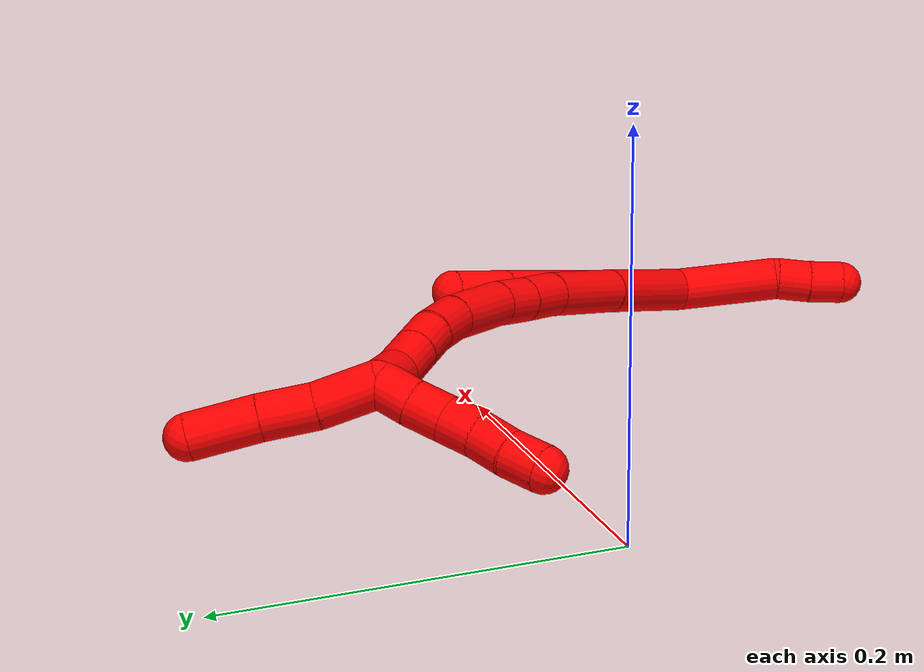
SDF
<sdf version="1.7">
 <world name="default">
  <model name="2">
   <static>0</static>
   <link name="2">
    <collision name="collision-cylinder-e_1_2_8">
     <pose>0.012264 0.005995 0.017486 -0.330293 0.585755 -0.100431</pose>
     <geometry><cylinder><radius>0.0125</radius><length>0.044366</length></cylinder></geometry>
     <surface>
      <friction><ode><mu>1.16</mu><mu2>1.16</mu2><slip1>0</slip1><slip2>0</slip2></ode></friction>
      <contact><ode><kp>1e+06</kp><kd>1</kd><max_vel>0</max_vel><min_depth>0.001</min_depth></ode></contact>
     </surface>
    </collision>
    <visual name="visual-cylinder-e_1_2_8">
     <pose>0.012264 0.005995 0.017486 -0.330293 0.585755 -0.100431</pose>
     <geometry><cylinder><radius>0.0125</radius><length>0.044366</length></cylinder></geometry>
     <material><ambient>1 0 0 1</ambient></material>
    </visual>
    <collision name="collision-cylinder-e_2_8_9">
     <pose>0.044277 0.02388 0.062023 -0.414113 0.58919 -0.127306</pose>
     <geometry><cylinder><radius>0.0125</radius><length>0.071082</length></cylinder></geometry>
     <surface>
      <friction><ode><mu>1.16</mu><mu2>1.16</mu2><slip1>0</slip1><slip2>0</slip2></ode></friction>
      <contact><ode><kp>1e+06</kp><kd>1</kd><max_vel>0</max_vel><min_depth>0.001</min_depth></ode></contact>
     </surface>
    </collision>
    <visual name="visual-cylinder-e_2_8_9">
     <pose>0.044277 0.02388 0.062023 -0.414113 0.58919 -0.127306</pose>
     <geometry><cylinder><radius>0.0125</radius><length>0.071082</length></cylinder></geometry>
     <material><ambient>1 0 0 1</ambient></material>
    </visual>
    <collision name="collision-cylinder-e_3_9_6">
     <pose>0.07368 0.041752 0.102091 -0.430747 0.592958 -0.13346</pose>
     <geometry><cylinder><radius>0.0125</radius><length>0.034552</length></cylinder></geometry>
     <surface>
      <friction><ode><mu>1.16</mu><mu2>1.16</mu2><slip1>0</slip1><slip2>0</slip2></ode></friction>
      <contact><ode><kp>1e+06</kp><kd>1</kd><max_vel>0</max_vel><min_depth>0.001</min_depth></ode></contact>
     </surface>
    </collision>
    <visual name="visual-cylinder-e_3_9_6">
     <pose>0.07368 0.041752 0.102091 -0.430747 0.592958 -0.13346</pose>
     <geometry><cylinder><radius>0.0125</radius><length>0.034552</length></cylinder></geometry>
     <material><ambient>1 0 0 1</ambient></material>
    </visual>
    <collision name="collision-cylinder-e_1_2_10">
     <pose>-0.013826 0.00548 -0.026 -2.93386 -0.479782 2.33586</pose>
     <geometry><cylinder><radius>0.0125</radius><length>0.059905</length></cylinder></geometry>
     <surface>
      <friction><ode><mu>1.16</mu><mu2>1.16</mu2><slip1>0</slip1><slip2>0</slip2></ode></friction>
      <contact><ode><kp>1e+06</kp><kd>1</kd><max_vel>0</max_vel><min_depth>0.001</min_depth></ode></contact>
     </surface>
    </collision>
    <visual name="visual-cylinder-e_1_2_10">
     <pose>-0.013826 0.00548 -0.026 -2.93386 -0.479782 2.33586</pose>
     <geometry><cylinder><radius>0.0125</radius><length>0.059905</length></cylinder></geometry>
     <material><ambient>1 0 0 1</ambient></material>
    </visual>
    <collision name="collision-cylinder-e_2_10_11">
     <pose>-0.031199 0.01057 -0.061369 3.09999 -0.36168 -2.915</pose>
     <geometry><cylinder><radius>0.0125</radius><length>0.020054</length></cylinder></geometry>
     <surface>
      <friction><ode><mu>1.16</mu><mu2>1.16</mu2><slip1>0</slip1><slip2>0</slip2></ode></friction>
      <contact><ode><kp>1e+06</kp><kd>1</kd><max_vel>0</max_vel><min_depth>0.001</min_depth></ode></contact>
     </surface>
    </collision>
    <visual name="visual-cylinder-e_2_10_11">
     <pose>-0.031199 0.01057 -0.061369 3.09999 -0.36168 -2.915</pose>
     <geometry><cylinder><radius>0.0125</radius><length>0.020054</length></cylinder></geometry>
     <material><ambient>1 0 0 1</ambient></material>
    </visual>
    <collision name="collision-cylinder-e_3_11_5">
     <pose>-0.038795 0.010461 -0.079902 -3.11091 -0.415828 2.99639</pose>
     <geometry><cylinder><radius>0.0125</radius><length>0.020041</length></cylinder></geometry>
     <surface>
      <friction><ode><mu>1.16</mu><mu2>1.16</mu2><slip1>0</slip1><slip2>0</slip2></ode></friction>
      <contact><ode><kp>1e+06</kp><kd>1</kd><max_vel>0</max_vel><min_depth>0.001</min_depth></ode></contact>
     </surface>
    </collision>
    <visual name="visual-cylinder-e_3_11_5">
     <pose>-0.038795 0.010461 -0.079902 -3.11091 -0.415828 2.99639</pose>
     <geometry><cylinder><radius>0.0125</radius><length>0.020041</length></cylinder></geometry>
     <material><ambient>1 0 0 1</ambient></material>
    </visual>
    <collision name="collision-cylinder-e_1_2_12">
     <pose>0.020137 0.021178 0.016933 -0.896307 0.638781 -0.31536</pose>
     <geometry><cylinder><radius>0.0125</radius><length>0.06755</length></cylinder></geometry>
     <surface>
      <friction><ode><mu>1.16</mu><mu2>1.16</mu2><slip1>0</slip1><slip2>0</slip2></ode></friction>
      <contact><ode><kp>1e+06</kp><kd>1</kd><max_vel>0</max_vel><min_depth>0.001</min_depth></ode></contact>
     </surface>
    </collision>
    <visual name="visual-cylinder-e_1_2_12">
     <pose>0.020137 0.021178 0.016933 -0.896307 0.638781 -0.31536</pose>
     <geometry><cylinder><radius>0.0125</radius><length>0.06755</length></cylinder></geometry>
     <material><ambient>1 0 0 1</ambient></material>
    </visual>
    <collision name="collision-cylinder-e_2_12_13">
     <pose>0.056305 0.058021 0.047131 -0.868233 0.66302 -0.316494</pose>
     <geometry><cylinder><radius>0.0125</radius><length>0.05209</length></cylinder></geometry>
     <surface>
      <friction><ode><mu>1.16</mu><mu2>1.16</mu2><slip1>0</slip1><slip2>0</slip2></ode></friction>
      <contact><ode><kp>1e+06</kp><kd>1</kd><max_vel>0</max_vel><min_depth>0.001</min_depth></ode></contact>
     </surface>
    </collision>
    <visual name="visual-cylinder-e_2_12_13">
     <pose>0.056305 0.058021 0.047131 -0.868233 0.66302 -0.316494</pose>
     <geometry><cylinder><radius>0.0125</radius><length>0.05209</length></cylinder></geometry>
     <material><ambient>1 0 0 1</ambient></material>
    </visual>
    <collision name="collision-cylinder-e_3_13_14">
     <pose>0.080996 0.081117 0.066055 -0.919765 0.747613 -0.383783</pose>
     <geometry><cylinder><radius>0.0125</radius><length>0.025475</length></cylinder></geometry>
     <surface>
      <friction><ode><mu>1.16</mu><mu2>1.16</mu2><slip1>0</slip1><slip2>0</slip2></ode></friction>
      <contact><ode><kp>1e+06</kp><kd>1</kd><max_vel>0</max_vel><min_depth>0.001</min_depth></ode></contact>
     </surface>
    </collision>
    <visual name="visual-cylinder-e_3_13_14">
     <pose>0.080996 0.081117 0.066055 -0.919765 0.747613 -0.383783</pose>
     <geometry><cylinder><radius>0.0125</radius><length>0.025475</length></cylinder></geometry>
     <material><ambient>1 0 0 1</ambient></material>
    </visual>
    <collision name="collision-cylinder-e_4_14_15">
     <pose>0.097018 0.095097 0.07698 -0.89374 0.719463 -0.356623</pose>
     <geometry><cylinder><radius>0.0125</radius><length>0.022343</length></cylinder></geometry>
     <surface>
      <friction><ode><mu>1.16</mu><mu2>1.16</mu2><slip1>0</slip1><slip2>0</slip2></ode></friction>
      <contact><ode><kp>1e+06</kp><kd>1</kd><max_vel>0</max_vel><min_depth>0.001</min_depth></ode></contact>
     </surface>
    </collision>
    <visual name="visual-cylinder-e_4_14_15">
     <pose>0.097018 0.095097 0.07698 -0.89374 0.719463 -0.356623</pose>
     <geometry><cylinder><radius>0.0125</radius><length>0.022343</length></cylinder></geometry>
     <material><ambient>1 0 0 1</ambient></material>
    </visual>
    <collision name="collision-cylinder-e_5_15_16">
     <pose>0.119337 0.114259 0.089557 -1.04535 0.798198 -0.476696</pose>
     <geometry><cylinder><radius>0.0125</radius><length>0.041775</length></cylinder></geometry>
     <surface>
      <friction><ode><mu>1.16</mu><mu2>1.16</mu2><slip1>0</slip1><slip2>0</slip2></ode></friction>
      <contact><ode><kp>1e+06</kp><kd>1</kd><max_vel>0</max_vel><min_depth>0.001</min_depth></ode></contact>
     </surface>
    </collision>
    <visual name="visual-cylinder-e_5_15_16">
     <pose>0.119337 0.114259 0.089557 -1.04535 0.798198 -0.476696</pose>
     <geometry><cylinder><radius>0.0125</radius><length>0.041775</length></cylinder></geometry>
     <material><ambient>1 0 0 1</ambient></material>
    </visual>
    <collision name="collision-cylinder-e_6_16_17">
     <pose>0.144233 0.134458 0.099218 -1.27075 0.896625 -0.681644</pose>
     <geometry><cylinder><radius>0.0125</radius><length>0.025443</length></cylinder></geometry>
     <surface>
      <friction><ode><mu>1.16</mu><mu2>1.16</mu2><slip1>0</slip1><slip2>0</slip2></ode></friction>
      <contact><ode><kp>1e+06</kp><kd>1</kd><max_vel>0</max_vel><min_depth>0.001</min_depth></ode></contact>
     </surface>
    </collision>
    <visual name="visual-cylinder-e_6_16_17">
     <pose>0.144233 0.134458 0.099218 -1.27075 0.896625 -0.681644</pose>
     <geometry><cylinder><radius>0.0125</radius><length>0.025443</length></cylinder></geometry>
     <material><ambient>1 0 0 1</ambient></material>
    </visual>
    <collision name="collision-cylinder-e_7_17_18">
     <pose>0.163161 0.147247 0.102394 -1.41275 1.0407 -0.909507</pose>
     <geometry><cylinder><radius>0.0125</radius><length>0.020841</length></cylinder></geometry>
     <surface>
      <friction><ode><mu>1.16</mu><mu2>1.16</mu2><slip1>0</slip1><slip2>0</slip2></ode></friction>
      <contact><ode><kp>1e+06</kp><kd>1</kd><max_vel>0</max_vel><min_depth>0.001</min_depth></ode></contact>
     </surface>
    </collision>
    <visual name="visual-cylinder-e_7_17_18">
     <pose>0.163161 0.147247 0.102394 -1.41275 1.0407 -0.909507</pose>
     <geometry><cylinder><radius>0.0125</radius><length>0.020841</length></cylinder></geometry>
     <material><ambient>1 0 0 1</ambient></material>
    </visual>
    <collision name="collision-cylinder-e_8_18_19">
     <pose>0.181958 0.158011 0.104149 -1.40592 1.04907 -0.911689</pose>
     <geometry><cylinder><radius>0.0125</radius><length>0.022622</length></cylinder></geometry>
     <surface>
      <friction><ode><mu>1.16</mu><mu2>1.16</mu2><slip1>0</slip1><slip2>0</slip2></ode></friction>
      <contact><ode><kp>1e+06</kp><kd>1</kd><max_vel>0</max_vel><min_depth>0.001</min_depth></ode></contact>
     </surface>
    </collision>
    <visual name="visual-cylinder-e_8_18_19">
     <pose>0.181958 0.158011 0.104149 -1.40592 1.04907 -0.911689</pose>
     <geometry><cylinder><radius>0.0125</radius><length>0.022622</length></cylinder></geometry>
     <material><ambient>1 0 0 1</ambient></material>
    </visual>
    <collision name="collision-cylinder-e_9_19_1">
     <pose>0.199506 0.17119 0.106302 -1.411 0.78707 -0.67982</pose>
     <geometry><cylinder><radius>0.0125</radius><length>0.021862</length></cylinder></geometry>
     <surface>
      <friction><ode><mu>1.16</mu><mu2>1.16</mu2><slip1>0</slip1><slip2>0</slip2></ode></friction>
      <contact><ode><kp>1e+06</kp><kd>1</kd><max_vel>0</max_vel><min_depth>0.001</min_depth></ode></contact>
     </surface>
    </collision>
    <visual name="visual-cylinder-e_9_19_1">
     <pose>0.199506 0.17119 0.106302 -1.411 0.78707 -0.67982</pose>
     <geometry><cylinder><radius>0.0125</radius><length>0.021862</length></cylinder></geometry>
     <material><ambient>1 0 0 1</ambient></material>
    </visual>
    <collision name="collision-cylinder-e_1_1_20">
     <pose>0.208692 0.179401 0.097652 -3.08167 0.144835 -2.35798</pose>
     <geometry><cylinder><radius>0.0125</radius><length>0.02</length></cylinder></geometry>
     <surface>
      <friction><ode><mu>1.16</mu><mu2>1.16</mu2><slip1>0</slip1><slip2>0</slip2></ode></friction>
      <contact><ode><kp>1e+06</kp><kd>1</kd><max_vel>0</max_vel><min_depth>0.001</min_depth></ode></contact>
     </surface>
    </collision>
    <visual name="visual-cylinder-e_1_1_20">
     <pose>0.208692 0.179401 0.097652 -3.08167 0.144835 -2.35798</pose>
     <geometry><cylinder><radius>0.0125</radius><length>0.02</length></cylinder></geometry>
     <material><ambient>1 0 0 1</ambient></material>
    </visual>
    <collision name="collision-cylinder-e_2_20_21">
     <pose>0.21098 0.181203 0.077884 -3.01989 0.084589 -1.21423</pose>
     <geometry><cylinder><radius>0.0125</radius><length>0.02</length></cylinder></geometry>
     <surface>
      <friction><ode><mu>1.16</mu><mu2>1.16</mu2><slip1>0</slip1><slip2>0</slip2></ode></friction>
      <contact><ode><kp>1e+06</kp><kd>1</kd><max_vel>0</max_vel><min_depth>0.001</min_depth></ode></contact>
     </surface>
    </collision>
    <visual name="visual-cylinder-e_2_20_21">
     <pose>0.21098 0.181203 0.077884 -3.01989 0.084589 -1.21423</pose>
     <geometry><cylinder><radius>0.0125</radius><length>0.02</length></cylinder></geometry>
     <material><ambient>1 0 0 1</ambient></material>
    </visual>
    <collision name="collision-cylinder-e_3_21_22">
     <pose>0.213328 0.185246 0.058522 -2.85091 0.150893 -0.953401</pose>
     <geometry><cylinder><radius>0.0125</radius><length>0.02</length></cylinder></geometry>
     <surface>
      <friction><ode><mu>1.16</mu><mu2>1.16</mu2><slip1>0</slip1><slip2>0</slip2></ode></friction>
      <contact><ode><kp>1e+06</kp><kd>1</kd><max_vel>0</max_vel><min_depth>0.001</min_depth></ode></contact>
     </surface>
    </collision>
    <visual name="visual-cylinder-e_3_21_22">
     <pose>0.213328 0.185246 0.058522 -2.85091 0.150893 -0.953401</pose>
     <geometry><cylinder><radius>0.0125</radius><length>0.02</length></cylinder></geometry>
     <material><ambient>1 0 0 1</ambient></material>
    </visual>
    <collision name="collision-cylinder-e_4_22_23">
     <pose>0.217424 0.191459 0.040003 -2.78411 0.262301 -1.2613</pose>
     <geometry><cylinder><radius>0.0125</radius><length>0.02</length></cylinder></geometry>
     <surface>
      <friction><ode><mu>1.16</mu><mu2>1.16</mu2><slip1>0</slip1><slip2>0</slip2></ode></friction>
      <contact><ode><kp>1e+06</kp><kd>1</kd><max_vel>0</max_vel><min_depth>0.001</min_depth></ode></contact>
     </surface>
    </collision>
    <visual name="visual-cylinder-e_4_22_23">
     <pose>0.217424 0.191459 0.040003 -2.78411 0.262301 -1.2613</pose>
     <geometry><cylinder><radius>0.0125</radius><length>0.02</length></cylinder></geometry>
     <material><ambient>1 0 0 1</ambient></material>
    </visual>
    <collision name="collision-cylinder-e_5_23_4">
     <pose>0.221513 0.198067 0.021609 -2.80901 0.150092 -0.842313</pose>
     <geometry><cylinder><radius>0.0125</radius><length>0.02</length></cylinder></geometry>
     <surface>
      <friction><ode><mu>1.16</mu><mu2>1.16</mu2><slip1>0</slip1><slip2>0</slip2></ode></friction>
      <contact><ode><kp>1e+06</kp><kd>1</kd><max_vel>0</max_vel><min_depth>0.001</min_depth></ode></contact>
     </surface>
    </collision>
    <visual name="visual-cylinder-e_5_23_4">
     <pose>0.221513 0.198067 0.021609 -2.80901 0.150092 -0.842313</pose>
     <geometry><cylinder><radius>0.0125</radius><length>0.02</length></cylinder></geometry>
     <material><ambient>1 0 0 1</ambient></material>
    </visual>
    <collision name="collision-cylinder-e_1_1_24">
     <pose>0.218135 0.174997 0.119757 0.302121 0.704514 0.111792</pose>
     <geometry><cylinder><radius>0.0125</radius><length>0.033619</length></cylinder></geometry>
     <surface>
      <friction><ode><mu>1.16</mu><mu2>1.16</mu2><slip1>0</slip1><slip2>0</slip2></ode></friction>
      <contact><ode><kp>1e+06</kp><kd>1</kd><max_vel>0</max_vel><min_depth>0.001</min_depth></ode></contact>
     </surface>
    </collision>
    <visual name="visual-cylinder-e_1_1_24">
     <pose>0.218135 0.174997 0.119757 0.302121 0.704514 0.111792</pose>
     <geometry><cylinder><radius>0.0125</radius><length>0.033619</length></cylinder></geometry>
     <material><ambient>1 0 0 1</ambient></material>
    </visual>
    <collision name="collision-cylinder-e_2_24_25">
     <pose>0.237442 0.169463 0.143828 0.144491 0.61306 0.045804</pose>
     <geometry><cylinder><radius>0.0125</radius><length>0.029266</length></cylinder></geometry>
     <surface>
      <friction><ode><mu>1.16</mu><mu2>1.16</mu2><slip1>0</slip1><slip2>0</slip2></ode></friction>
      <contact><ode><kp>1e+06</kp><kd>1</kd><max_vel>0</max_vel><min_depth>0.001</min_depth></ode></contact>
     </surface>
    </collision>
    <visual name="visual-cylinder-e_2_24_25">
     <pose>0.237442 0.169463 0.143828 0.144491 0.61306 0.045804</pose>
     <geometry><cylinder><radius>0.0125</radius><length>0.029266</length></cylinder></geometry>
     <material><ambient>1 0 0 1</ambient></material>
    </visual>
    <collision name="collision-cylinder-e_3_25_3">
     <pose>0.25737 0.165261 0.170017 0.171086 0.668974 0.059588</pose>
     <geometry><cylinder><radius>0.0125</radius><length>0.037115</length></cylinder></geometry>
     <surface>
      <friction><ode><mu>1.16</mu><mu2>1.16</mu2><slip1>0</slip1><slip2>0</slip2></ode></friction>
      <contact><ode><kp>1e+06</kp><kd>1</kd><max_vel>0</max_vel><min_depth>0.001</min_depth></ode></contact>
     </surface>
    </collision>
    <visual name="visual-cylinder-e_3_25_3">
     <pose>0.25737 0.165261 0.170017 0.171086 0.668974 0.059588</pose>
     <geometry><cylinder><radius>0.0125</radius><length>0.037115</length></cylinder></geometry>
     <material><ambient>1 0 0 1</ambient></material>
    </visual>
    <collision name="collision-sphere-3">
     <pose>0.268879 0.162783 0.184361 0 -0 0</pose>
     <geometry><sphere><radius>0.0125</radius></sphere></geometry>
     <surface>
      <friction><ode><mu>1.16</mu><mu2>1.16</mu2><slip1>0</slip1><slip2>0</slip2></ode></friction>
      <contact><ode><kp>1e+06</kp><kd>1</kd><max_vel>0</max_vel><min_depth>0.001</min_depth></ode></contact>
     </surface>
    </collision>
    <visual name="visual-sphere-3">
     <pose>0.268879 0.162783 0.184361 0 -0 0</pose>
     <geometry><sphere><radius>0.0125</radius></sphere></geometry>
     <material><ambient>1 0 0 1</ambient></material>
    </visual>
    <collision name="collision-sphere-25">
     <pose>0.245861 0.16774 0.155672 0 -0 0</pose>
     <geometry><sphere><radius>0.0125</radius></sphere></geometry>
     <surface>
      <friction><ode><mu>1.16</mu><mu2>1.16</mu2><slip1>0</slip1><slip2>0</slip2></ode></friction>
      <contact><ode><kp>1e+06</kp><kd>1</kd><max_vel>0</max_vel><min_depth>0.001</min_depth></ode></contact>
     </surface>
    </collision>
    <visual name="visual-sphere-25">
     <pose>0.245861 0.16774 0.155672 0 -0 0</pose>
     <geometry><sphere><radius>0.0125</radius></sphere></geometry>
     <material><ambient>1 0 0 1</ambient></material>
    </visual>
    <collision name="collision-sphere-24">
     <pose>0.229022 0.171186 0.131984 0 -0 0</pose>
     <geometry><sphere><radius>0.0125</radius></sphere></geometry>
     <surface>
      <friction><ode><mu>1.16</mu><mu2>1.16</mu2><slip1>0</slip1><slip2>0</slip2></ode></friction>
      <contact><ode><kp>1e+06</kp><kd>1</kd><max_vel>0</max_vel><min_depth>0.001</min_depth></ode></contact>
     </surface>
    </collision>
    <visual name="visual-sphere-24">
     <pose>0.229022 0.171186 0.131984 0 -0 0</pose>
     <geometry><sphere><radius>0.0125</radius></sphere></geometry>
     <material><ambient>1 0 0 1</ambient></material>
    </visual>
    <collision name="collision-sphere-4">
     <pose>0.223008 0.201295 0.012264 0 -0 0</pose>
     <geometry><sphere><radius>0.0125</radius></sphere></geometry>
     <surface>
      <friction><ode><mu>1.16</mu><mu2>1.16</mu2><slip1>0</slip1><slip2>0</slip2></ode></friction>
      <contact><ode><kp>1e+06</kp><kd>1</kd><max_vel>0</max_vel><min_depth>0.001</min_depth></ode></contact>
     </surface>
    </collision>
    <visual name="visual-sphere-4">
     <pose>0.223008 0.201295 0.012264 0 -0 0</pose>
     <geometry><sphere><radius>0.0125</radius></sphere></geometry>
     <material><ambient>1 0 0 1</ambient></material>
    </visual>
    <collision name="collision-sphere-23">
     <pose>0.220017 0.194839 0.030955 0 -0 0</pose>
     <geometry><sphere><radius>0.0125</radius></sphere></geometry>
     <surface>
      <friction><ode><mu>1.16</mu><mu2>1.16</mu2><slip1>0</slip1><slip2>0</slip2></ode></friction>
      <contact><ode><kp>1e+06</kp><kd>1</kd><max_vel>0</max_vel><min_depth>0.001</min_depth></ode></contact>
     </surface>
    </collision>
    <visual name="visual-sphere-23">
     <pose>0.220017 0.194839 0.030955 0 -0 0</pose>
     <geometry><sphere><radius>0.0125</radius></sphere></geometry>
     <material><ambient>1 0 0 1</ambient></material>
    </visual>
    <collision name="collision-sphere-22">
     <pose>0.214831 0.18808 0.04905 0 -0 0</pose>
     <geometry><sphere><radius>0.0125</radius></sphere></geometry>
     <surface>
      <friction><ode><mu>1.16</mu><mu2>1.16</mu2><slip1>0</slip1><slip2>0</slip2></ode></friction>
      <contact><ode><kp>1e+06</kp><kd>1</kd><max_vel>0</max_vel><min_depth>0.001</min_depth></ode></contact>
     </surface>
    </collision>
    <visual name="visual-sphere-22">
     <pose>0.214831 0.18808 0.04905 0 -0 0</pose>
     <geometry><sphere><radius>0.0125</radius></sphere></geometry>
     <material><ambient>1 0 0 1</ambient></material>
    </visual>
    <collision name="collision-sphere-21">
     <pose>0.211825 0.182413 0.067993 0 -0 0</pose>
     <geometry><sphere><radius>0.0125</radius></sphere></geometry>
     <surface>
      <friction><ode><mu>1.16</mu><mu2>1.16</mu2><slip1>0</slip1><slip2>0</slip2></ode></friction>
      <contact><ode><kp>1e+06</kp><kd>1</kd><max_vel>0</max_vel><min_depth>0.001</min_depth></ode></contact>
     </surface>
    </collision>
    <visual name="visual-sphere-21">
     <pose>0.211825 0.182413 0.067993 0 -0 0</pose>
     <geometry><sphere><radius>0.0125</radius></sphere></geometry>
     <material><ambient>1 0 0 1</ambient></material>
    </visual>
    <collision name="collision-sphere-20">
     <pose>0.210135 0.179993 0.087774 0 -0 0</pose>
     <geometry><sphere><radius>0.0125</radius></sphere></geometry>
     <surface>
      <friction><ode><mu>1.16</mu><mu2>1.16</mu2><slip1>0</slip1><slip2>0</slip2></ode></friction>
      <contact><ode><kp>1e+06</kp><kd>1</kd><max_vel>0</max_vel><min_depth>0.001</min_depth></ode></contact>
     </surface>
    </collision>
    <visual name="visual-sphere-20">
     <pose>0.210135 0.179993 0.087774 0 -0 0</pose>
     <geometry><sphere><radius>0.0125</radius></sphere></geometry>
     <material><ambient>1 0 0 1</ambient></material>
    </visual>
    <collision name="collision-sphere-11">
     <pose>-0.034747 0.01018 -0.07074 0 -0 0</pose>
     <geometry><sphere><radius>0.0125</radius></sphere></geometry>
     <surface>
      <friction><ode><mu>1.16</mu><mu2>1.16</mu2><slip1>0</slip1><slip2>0</slip2></ode></friction>
      <contact><ode><kp>1e+06</kp><kd>1</kd><max_vel>0</max_vel><min_depth>0.001</min_depth></ode></contact>
     </surface>
    </collision>
    <visual name="visual-sphere-11">
     <pose>-0.034747 0.01018 -0.07074 0 -0 0</pose>
     <geometry><sphere><radius>0.0125</radius></sphere></geometry>
     <material><ambient>1 0 0 1</ambient></material>
    </visual>
    <collision name="collision-sphere-10">
     <pose>-0.027651 0.01096 -0.051999 0 -0 0</pose>
     <geometry><sphere><radius>0.0125</radius></sphere></geometry>
     <surface>
      <friction><ode><mu>1.16</mu><mu2>1.16</mu2><slip1>0</slip1><slip2>0</slip2></ode></friction>
      <contact><ode><kp>1e+06</kp><kd>1</kd><max_vel>0</max_vel><min_depth>0.001</min_depth></ode></contact>
     </surface>
    </collision>
    <visual name="visual-sphere-10">
     <pose>-0.027651 0.01096 -0.051999 0 -0 0</pose>
     <geometry><sphere><radius>0.0125</radius></sphere></geometry>
     <material><ambient>1 0 0 1</ambient></material>
    </visual>
    <collision name="collision-sphere-6">
     <pose>0.083334 0.047734 0.11511 0 -0 0</pose>
     <geometry><sphere><radius>0.0125</radius></sphere></geometry>
     <surface>
      <friction><ode><mu>1.16</mu><mu2>1.16</mu2><slip1>0</slip1><slip2>0</slip2></ode></friction>
      <contact><ode><kp>1e+06</kp><kd>1</kd><max_vel>0</max_vel><min_depth>0.001</min_depth></ode></contact>
     </surface>
    </collision>
    <visual name="visual-sphere-6">
     <pose>0.083334 0.047734 0.11511 0 -0 0</pose>
     <geometry><sphere><radius>0.0125</radius></sphere></geometry>
     <material><ambient>1 0 0 1</ambient></material>
    </visual>
    <collision name="collision-sphere-9">
     <pose>0.064026 0.035769 0.089073 0 -0 0</pose>
     <geometry><sphere><radius>0.0125</radius></sphere></geometry>
     <surface>
      <friction><ode><mu>1.16</mu><mu2>1.16</mu2><slip1>0</slip1><slip2>0</slip2></ode></friction>
      <contact><ode><kp>1e+06</kp><kd>1</kd><max_vel>0</max_vel><min_depth>0.001</min_depth></ode></contact>
     </surface>
    </collision>
    <visual name="visual-sphere-9">
     <pose>0.064026 0.035769 0.089073 0 -0 0</pose>
     <geometry><sphere><radius>0.0125</radius></sphere></geometry>
     <material><ambient>1 0 0 1</ambient></material>
    </visual>
    <collision name="collision-sphere-2">
     <geometry><sphere><radius>0.0125</radius></sphere></geometry>
     <surface>
      <friction><ode><mu>1.16</mu><mu2>1.16</mu2><slip1>0</slip1><slip2>0</slip2></ode></friction>
      <contact><ode><kp>1e+06</kp><kd>1</kd><max_vel>0</max_vel><min_depth>0.001</min_depth></ode></contact>
     </surface>
    </collision>
    <visual name="visual-sphere-2">
     <geometry><sphere><radius>0.0125</radius></sphere></geometry>
     <material><ambient>1 0 0 1</ambient></material>
    </visual>
    <collision name="collision-sphere-19">
     <pose>0.191764 0.163572 0.105074 0 -0 0</pose>
     <geometry><sphere><radius>0.0125</radius></sphere></geometry>
     <surface>
      <friction><ode><mu>1.16</mu><mu2>1.16</mu2><slip1>0</slip1><slip2>0</slip2></ode></friction>
      <contact><ode><kp>1e+06</kp><kd>1</kd><max_vel>0</max_vel><min_depth>0.001</min_depth></ode></contact>
     </surface>
    </collision>
    <visual name="visual-sphere-19">
     <pose>0.191764 0.163572 0.105074 0 -0 0</pose>
     <geometry><sphere><radius>0.0125</radius></sphere></geometry>
     <material><ambient>1 0 0 1</ambient></material>
    </visual>
    <collision name="collision-sphere-8">
     <pose>0.024527 0.01199 0.034972 0 -0 0</pose>
     <geometry><sphere><radius>0.0125</radius></sphere></geometry>
     <surface>
      <friction><ode><mu>1.16</mu><mu2>1.16</mu2><slip1>0</slip1><slip2>0</slip2></ode></friction>
      <contact><ode><kp>1e+06</kp><kd>1</kd><max_vel>0</max_vel><min_depth>0.001</min_depth></ode></contact>
     </surface>
    </collision>
    <visual name="visual-sphere-8">
     <pose>0.024527 0.01199 0.034972 0 -0 0</pose>
     <geometry><sphere><radius>0.0125</radius></sphere></geometry>
     <material><ambient>1 0 0 1</ambient></material>
    </visual>
    <collision name="collision-sphere-5">
     <pose>-0.042843 0.010742 -0.089064 0 -0 0</pose>
     <geometry><sphere><radius>0.0125</radius></sphere></geometry>
     <surface>
      <friction><ode><mu>1.16</mu><mu2>1.16</mu2><slip1>0</slip1><slip2>0</slip2></ode></friction>
      <contact><ode><kp>1e+06</kp><kd>1</kd><max_vel>0</max_vel><min_depth>0.001</min_depth></ode></contact>
     </surface>
    </collision>
    <visual name="visual-sphere-5">
     <pose>-0.042843 0.010742 -0.089064 0 -0 0</pose>
     <geometry><sphere><radius>0.0125</radius></sphere></geometry>
     <material><ambient>1 0 0 1</ambient></material>
    </visual>
    <collision name="collision-sphere-12">
     <pose>0.040274 0.042355 0.033867 0 -0 0</pose>
     <geometry><sphere><radius>0.0125</radius></sphere></geometry>
     <surface>
      <friction><ode><mu>1.16</mu><mu2>1.16</mu2><slip1>0</slip1><slip2>0</slip2></ode></friction>
      <contact><ode><kp>1e+06</kp><kd>1</kd><max_vel>0</max_vel><min_depth>0.001</min_depth></ode></contact>
     </surface>
    </collision>
    <visual name="visual-sphere-12">
     <pose>0.040274 0.042355 0.033867 0 -0 0</pose>
     <geometry><sphere><radius>0.0125</radius></sphere></geometry>
     <material><ambient>1 0 0 1</ambient></material>
    </visual>
    <collision name="collision-sphere-13">
     <pose>0.072335 0.073687 0.060395 0 -0 0</pose>
     <geometry><sphere><radius>0.0125</radius></sphere></geometry>
     <surface>
      <friction><ode><mu>1.16</mu><mu2>1.16</mu2><slip1>0</slip1><slip2>0</slip2></ode></friction>
      <contact><ode><kp>1e+06</kp><kd>1</kd><max_vel>0</max_vel><min_depth>0.001</min_depth></ode></contact>
     </surface>
    </collision>
    <visual name="visual-sphere-13">
     <pose>0.072335 0.073687 0.060395 0 -0 0</pose>
     <geometry><sphere><radius>0.0125</radius></sphere></geometry>
     <material><ambient>1 0 0 1</ambient></material>
    </visual>
    <collision name="collision-sphere-14">
     <pose>0.089656 0.088548 0.071716 0 -0 0</pose>
     <geometry><sphere><radius>0.0125</radius></sphere></geometry>
     <surface>
      <friction><ode><mu>1.16</mu><mu2>1.16</mu2><slip1>0</slip1><slip2>0</slip2></ode></friction>
      <contact><ode><kp>1e+06</kp><kd>1</kd><max_vel>0</max_vel><min_depth>0.001</min_depth></ode></contact>
     </surface>
    </collision>
    <visual name="visual-sphere-14">
     <pose>0.089656 0.088548 0.071716 0 -0 0</pose>
     <geometry><sphere><radius>0.0125</radius></sphere></geometry>
     <material><ambient>1 0 0 1</ambient></material>
    </visual>
    <collision name="collision-sphere-15">
     <pose>0.104379 0.101646 0.082244 0 -0 0</pose>
     <geometry><sphere><radius>0.0125</radius></sphere></geometry>
     <surface>
      <friction><ode><mu>1.16</mu><mu2>1.16</mu2><slip1>0</slip1><slip2>0</slip2></ode></friction>
      <contact><ode><kp>1e+06</kp><kd>1</kd><max_vel>0</max_vel><min_depth>0.001</min_depth></ode></contact>
     </surface>
    </collision>
    <visual name="visual-sphere-15">
     <pose>0.104379 0.101646 0.082244 0 -0 0</pose>
     <geometry><sphere><radius>0.0125</radius></sphere></geometry>
     <material><ambient>1 0 0 1</ambient></material>
    </visual>
    <collision name="collision-sphere-16">
     <pose>0.134294 0.126871 0.096871 0 -0 0</pose>
     <geometry><sphere><radius>0.0125</radius></sphere></geometry>
     <surface>
      <friction><ode><mu>1.16</mu><mu2>1.16</mu2><slip1>0</slip1><slip2>0</slip2></ode></friction>
      <contact><ode><kp>1e+06</kp><kd>1</kd><max_vel>0</max_vel><min_depth>0.001</min_depth></ode></contact>
     </surface>
    </collision>
    <visual name="visual-sphere-16">
     <pose>0.134294 0.126871 0.096871 0 -0 0</pose>
     <geometry><sphere><radius>0.0125</radius></sphere></geometry>
     <material><ambient>1 0 0 1</ambient></material>
    </visual>
    <collision name="collision-sphere-17">
     <pose>0.154171 0.142044 0.101565 0 -0 0</pose>
     <geometry><sphere><radius>0.0125</radius></sphere></geometry>
     <surface>
      <friction><ode><mu>1.16</mu><mu2>1.16</mu2><slip1>0</slip1><slip2>0</slip2></ode></friction>
      <contact><ode><kp>1e+06</kp><kd>1</kd><max_vel>0</max_vel><min_depth>0.001</min_depth></ode></contact>
     </surface>
    </collision>
    <visual name="visual-sphere-17">
     <pose>0.154171 0.142044 0.101565 0 -0 0</pose>
     <geometry><sphere><radius>0.0125</radius></sphere></geometry>
     <material><ambient>1 0 0 1</ambient></material>
    </visual>
    <collision name="collision-sphere-18">
     <pose>0.172152 0.152451 0.103223 0 -0 0</pose>
     <geometry><sphere><radius>0.0125</radius></sphere></geometry>
     <surface>
      <friction><ode><mu>1.16</mu><mu2>1.16</mu2><slip1>0</slip1><slip2>0</slip2></ode></friction>
      <contact><ode><kp>1e+06</kp><kd>1</kd><max_vel>0</max_vel><min_depth>0.001</min_depth></ode></contact>
     </surface>
    </collision>
    <visual name="visual-sphere-18">
     <pose>0.172152 0.152451 0.103223 0 -0 0</pose>
     <geometry><sphere><radius>0.0125</radius></sphere></geometry>
     <material><ambient>1 0 0 1</ambient></material>
    </visual>
    <collision name="collision-sphere-1">
     <pose>0.207248 0.178808 0.107529 0 -0 0</pose>
     <geometry><sphere><radius>0.0125</radius></sphere></geometry>
     <surface>
      <friction><ode><mu>1.16</mu><mu2>1.16</mu2><slip1>0</slip1><slip2>0</slip2></ode></friction>
      <contact><ode><kp>1e+06</kp><kd>1</kd><max_vel>0</max_vel><min_depth>0.001</min_depth></ode></contact>
     </surface>
    </collision>
    <visual name="visual-sphere-1">
     <pose>0.207248 0.178808 0.107529 0 -0 0</pose>
     <geometry><sphere><radius>0.0125</radius></sphere></geometry>
     <material><ambient>1 0 0 1</ambient></material>
    </visual>
    <inertial>
     <pose>0.104449 0.089418 0.059817 0 -0 0</pose>
     <mass>0.75</mass>
     <inertia><ixx>9e-05</ixx><ixy>0</ixy><ixz>0</ixz><iyy>0.000124</iyy><iyz>0</iyz><izz>-0.000111</izz></inertia>
    </inertial>
   </link>
   <pose>0.31291 -0.171114 0.012506 1.10706 0.694267 2.22017</pose>
  </model>
 </world>
</sdf>
